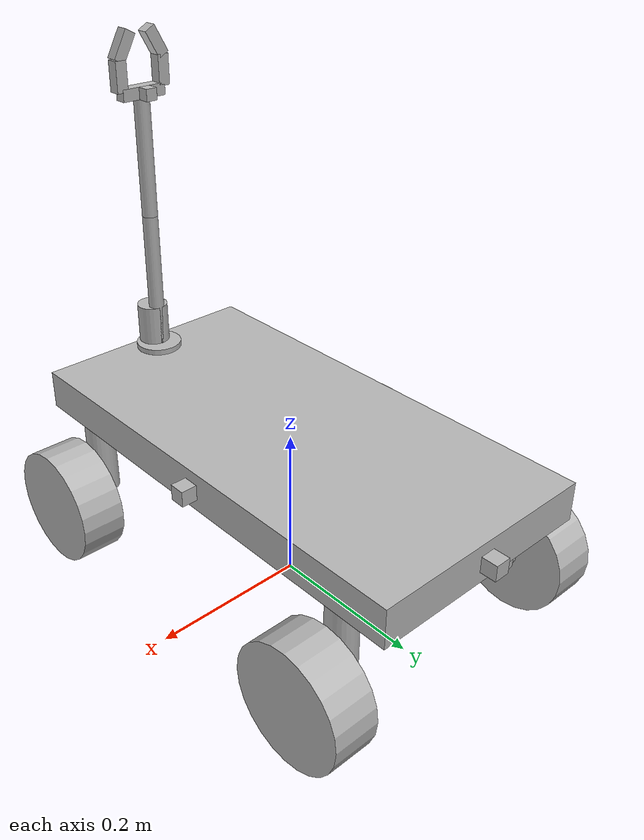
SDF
<?xml version="1.0" ?>
<sdf version="1.6">
	<model name="wheely">
		<link name="body_link">
			<pose>0 0 0.19649999999999998 0 0 0</pose>
			<inertial>
				<inertia>
					<ixx>0.30208333</ixx>
					<iyy>0.07708333</iyy>
					<izz>0.37500000</izz>
				</inertia>
				<mass>10.00000000</mass>
			</inertial>
			<visual name="body_link_vis">
				<geometry>
					<box>
						<size>0.3 0.6 0.049999999999999996</size>
					</box>
				</geometry>
			</visual>
			<collision name="body_link_col">
				<geometry>
					<box>
						<size>0.3 0.6 0.049999999999999996</size>
					</box>
				</geometry>
			</collision>
		</link>
		<link name="susp_1">
			<pose>0.13125 -0.22499999999999998 0.12375 0 0 0</pose>
			<inertial>
				<inertia>
					<ixx>0.00088008</ixx>
					<iyy>0.00088008</iyy>
					<izz>0.00017578</izz>
				</inertia>
				<mass>1.00000000</mass>
			</inertial>
			<visual name="susp_1_vis">
				<geometry>
					<cylinder>
						<radius>0.01875</radius>
						<length>0.0975</length>
					</cylinder>
				</geometry>
			</visual>
			<collision name="susp_1_col">
				<geometry>
					<cylinder>
						<radius>0.01875</radius>
						<length>0.0975</length>
					</cylinder>
				</geometry>
			</collision>
		</link>
		<link name="wheel_1">
			<pose>0.18125000000000002 -0.22499999999999998 0.075 0 1.5707963267948966 0</pose>
			<inertial>
				<inertia>
					<ixx>0.00281250</ixx>
					<iyy>0.00168362</iyy>
					<izz>0.00168362</izz>
				</inertia>
				<mass>1.00000000</mass>
			</inertial>
			<visual name="wheel_1_vis">
				<geometry>
					<cylinder>
						<radius>0.075</radius>
						<length>0.05769230769230769</length>
					</cylinder>
				</geometry>
			</visual>
			<collision name="wheel_1_col">
				<geometry>
					<cylinder>
						<radius>0.075</radius>
						<length>0.05769230769230769</length>
					</cylinder>
				</geometry>
			</collision>
		</link>
		<joint name="susp1_body" type="fixed">
			<pose>0 0 0.04875 0 0 0</pose>
			<child>susp_1</child>
			<parent>body_link</parent>
		</joint>
		<joint name="susp_axel_1" type="fixed">
			<pose>0 0 -0.025 0 0 0</pose>
			<child>axel_1</child>
			<parent>susp_1</parent>
		</joint>
		<link name="susp_2">
			<pose>0.13125 0.22499999999999998 0.12375 0 0 0</pose>
			<inertial>
				<inertia>
					<ixx>0.00088008</ixx>
					<iyy>0.00088008</iyy>
					<izz>0.00017578</izz>
				</inertia>
				<mass>1.00000000</mass>
			</inertial>
			<visual name="susp_2_vis">
				<geometry>
					<cylinder>
						<radius>0.01875</radius>
						<length>0.0975</length>
					</cylinder>
				</geometry>
			</visual>
			<collision name="susp_2_col">
				<geometry>
					<cylinder>
						<radius>0.01875</radius>
						<length>0.0975</length>
					</cylinder>
				</geometry>
			</collision>
		</link>
		<link name="wheel_2">
			<pose>0.18125000000000002 0.22499999999999998 0.075 0 1.5707963267948966 0</pose>
			<inertial>
				<inertia>
					<ixx>0.00281250</ixx>
					<iyy>0.00168362</iyy>
					<izz>0.00168362</izz>
				</inertia>
				<mass>1.00000000</mass>
			</inertial>
			<visual name="wheel_2_vis">
				<geometry>
					<cylinder>
						<radius>0.075</radius>
						<length>0.05769230769230769</length>
					</cylinder>
				</geometry>
			</visual>
			<collision name="wheel_2_col">
				<geometry>
					<cylinder>
						<radius>0.075</radius>
						<length>0.05769230769230769</length>
					</cylinder>
				</geometry>
			</collision>
		</link>
		<joint name="susp2_body" type="fixed">
			<pose>0 0 0.04875 0 0 0</pose>
			<child>susp_2</child>
			<parent>body_link</parent>
		</joint>
		<joint name="susp_axel_2" type="fixed">
			<pose>0 0 -0.025 0 0 0</pose>
			<child>axel_2</child>
			<parent>susp_2</parent>
		</joint>
		<link name="susp_4">
			<pose>-0.13125 -0.22499999999999998 0.12375 0 0 0</pose>
			<inertial>
				<inertia>
					<ixx>0.00088008</ixx>
					<iyy>0.00088008</iyy>
					<izz>0.00017578</izz>
				</inertia>
				<mass>1.00000000</mass>
			</inertial>
			<visual name="susp_4_vis">
				<geometry>
					<cylinder>
						<radius>0.01875</radius>
						<length>0.0975</length>
					</cylinder>
				</geometry>
			</visual>
			<collision name="susp_4_col">
				<geometry>
					<cylinder>
						<radius>0.01875</radius>
						<length>0.0975</length>
					</cylinder>
				</geometry>
			</collision>
		</link>
		<link name="wheel_4">
			<pose>-0.18125000000000002 -0.22499999999999998 0.075 0 1.5707963267948966 0</pose>
			<inertial>
				<inertia>
					<ixx>0.00281250</ixx>
					<iyy>0.00168362</iyy>
					<izz>0.00168362</izz>
				</inertia>
				<mass>1.00000000</mass>
			</inertial>
			<visual name="wheel_4_vis">
				<geometry>
					<cylinder>
						<radius>0.075</radius>
						<length>0.05769230769230769</length>
					</cylinder>
				</geometry>
			</visual>
			<collision name="wheel_4_col">
				<geometry>
					<cylinder>
						<radius>0.075</radius>
						<length>0.05769230769230769</length>
					</cylinder>
				</geometry>
			</collision>
		</link>
		<joint name="susp4_body" type="fixed">
			<pose>0 0 0.04875 0 0 0</pose>
			<child>susp_4</child>
			<parent>body_link</parent>
		</joint>
		<joint name="susp_axel_4" type="fixed">
			<pose>0 0 0.025 0 0 0</pose>
			<child>axel_4</child>
			<parent>susp_4</parent>
		</joint>
		<link name="axel_1">
			<pose>0.15625 -0.22499999999999998 0.075 0 1.5707963267948966 0</pose>
			<inertial>
				<inertia>
					<ixx>0.00003600</ixx>
					<iyy>0.00012217</iyy>
					<izz>0.00012217</izz>
				</inertia>
				<mass>0.50000000</mass>
			</inertial>
			<visual name="axel_1_vis">
				<geometry>
					<cylinder>
						<radius>0.012</radius>
						<length>0.05</length>
					</cylinder>
				</geometry>
			</visual>
			<collision name="axel_1_col">
				<geometry>
					<cylinder>
						<radius>0.012</radius>
						<length>0.05</length>
					</cylinder>
				</geometry>
			</collision>
		</link>
		<joint name="axel_wheel_1" type="revolute">
			<pose>0 0 -0.028846153846153844 0 -1.5707963267948966 0</pose>
			<child>wheel_1</child>
			<parent>axel_1</parent>
			<axis>
				<xyz>1 0 0</xyz>
				<dynamics>
					<friction>0.05</friction>
					<damping>0.03</damping>
				</dynamics>
			</axis>
		</joint>
		<link name="axel_2">
			<pose>0.15625 0.22499999999999998 0.075 0 1.5707963267948966 0</pose>
			<inertial>
				<inertia>
					<ixx>0.00003600</ixx>
					<iyy>0.00012217</iyy>
					<izz>0.00012217</izz>
				</inertia>
				<mass>0.50000000</mass>
			</inertial>
			<visual name="axel_2_vis">
				<geometry>
					<cylinder>
						<radius>0.012</radius>
						<length>0.05</length>
					</cylinder>
				</geometry>
			</visual>
			<collision name="axel_2_col">
				<geometry>
					<cylinder>
						<radius>0.012</radius>
						<length>0.05</length>
					</cylinder>
				</geometry>
			</collision>
		</link>
		<joint name="axel_wheel_2" type="revolute">
			<pose>0 0 -0.028846153846153844 0 -1.5707963267948966 0</pose>
			<child>wheel_2</child>
			<parent>axel_2</parent>
			<axis>
				<xyz>1 0 0</xyz>
				<dynamics>
					<friction>0.05</friction>
					<damping>0.03</damping>
				</dynamics>
			</axis>
		</joint>
		<link name="axel_3">
			<pose>-0.15625 0.22499999999999998 0.075 0 1.5707963267948966 0</pose>
			<inertial>
				<inertia>
					<ixx>0.00003600</ixx>
					<iyy>0.00012217</iyy>
					<izz>0.00012217</izz>
				</inertia>
				<mass>0.50000000</mass>
			</inertial>
			<visual name="axel_3_vis">
				<geometry>
					<cylinder>
						<radius>0.012</radius>
						<length>0.05</length>
					</cylinder>
				</geometry>
			</visual>
			<collision name="axel_3_col">
				<geometry>
					<cylinder>
						<radius>0.012</radius>
						<length>0.05</length>
					</cylinder>
				</geometry>
			</collision>
		</link>
		<joint name="axel_wheel_3" type="revolute">
			<pose>0 0 0.028846153846153844 0 -1.5707963267948966 0</pose>
			<child>wheel_3</child>
			<parent>axel_3</parent>
			<axis>
				<xyz>1 0 0</xyz>
				<dynamics>
					<friction>0.05</friction>
					<damping>0.03</damping>
				</dynamics>
			</axis>
		</joint>
		<link name="axel_4">
			<pose>-0.15625 -0.22499999999999998 0.075 0 1.5707963267948966 0</pose>
			<inertial>
				<inertia>
					<ixx>0.00003600</ixx>
					<iyy>0.00012217</iyy>
					<izz>0.00012217</izz>
				</inertia>
				<mass>0.50000000</mass>
			</inertial>
			<visual name="axel_4_vis">
				<geometry>
					<cylinder>
						<radius>0.012</radius>
						<length>0.05</length>
					</cylinder>
				</geometry>
			</visual>
			<collision name="axel_4_col">
				<geometry>
					<cylinder>
						<radius>0.012</radius>
						<length>0.05</length>
					</cylinder>
				</geometry>
			</collision>
		</link>
		<joint name="axel_wheel_4" type="revolute">
			<pose>0 0 0.028846153846153844 0 -1.5707963267948966 0</pose>
			<child>wheel_4</child>
			<parent>axel_4</parent>
			<axis>
				<xyz>1 0 0</xyz>
				<dynamics>
					<friction>0.05</friction>
					<damping>0.03</damping>
				</dynamics>
			</axis>
		</joint>
		<link name="susp_3">
			<pose>-0.13125 0.22499999999999998 0.12375 0 0 0</pose>
			<inertial>
				<inertia>
					<ixx>0.00088008</ixx>
					<iyy>0.00088008</iyy>
					<izz>0.00017578</izz>
				</inertia>
				<mass>1.00000000</mass>
			</inertial>
			<visual name="susp_3_vis">
				<geometry>
					<cylinder>
						<radius>0.01875</radius>
						<length>0.0975</length>
					</cylinder>
				</geometry>
			</visual>
			<collision name="susp_3_col">
				<geometry>
					<cylinder>
						<radius>0.01875</radius>
						<length>0.0975</length>
					</cylinder>
				</geometry>
			</collision>
		</link>
		<link name="wheel_3">
			<pose>-0.18125000000000002 0.22499999999999998 0.075 0 1.5707963267948966 0</pose>
			<inertial>
				<inertia>
					<ixx>0.00281250</ixx>
					<iyy>0.00168362</iyy>
					<izz>0.00168362</izz>
				</inertia>
				<mass>1.00000000</mass>
			</inertial>
			<visual name="wheel_3_vis">
				<geometry>
					<cylinder>
						<radius>0.075</radius>
						<length>0.05769230769230769</length>
					</cylinder>
				</geometry>
			</visual>
			<collision name="wheel_3_col">
				<geometry>
					<cylinder>
						<radius>0.075</radius>
						<length>0.05769230769230769</length>
					</cylinder>
				</geometry>
			</collision>
		</link>
		<joint name="susp3_body" type="fixed">
			<pose>0 0 0.04875 0 0 0</pose>
			<child>susp_3</child>
			<parent>body_link</parent>
		</joint>
		<joint name="susp_axel_3" type="fixed">
			<pose>0 0 0.025 0 0 0</pose>
			<child>axel_3</child>
			<parent>susp_3</parent>
		</joint>
		<link name="arm_base">
			<pose>0 -0.27 0.22149999999999997 0 0 0</pose>
			<inertial>
				<inertia>
					<ixx>0.00024375</ixx>
					<iyy>0.00024375</iyy>
					<izz>0.00045000</izz>
				</inertia>
				<mass>1.00000000</mass>
			</inertial>
			<visual name="arm_base_vis">
				<geometry>
					<cylinder>
						<radius>0.03</radius>
						<length>0.015</length>
					</cylinder>
				</geometry>
			</visual>
			<collision name="arm_base_col">
				<geometry>
					<cylinder>
						<radius>0.03</radius>
						<length>0.015</length>
					</cylinder>
				</geometry>
			</collision>
		</link>
		<joint name="bodyLink_armBase" type="fixed">
			<pose>0 0 0 0 0 0</pose>
			<child>arm_base</child>
			<parent>body_link</parent>
		</joint>
		<link name="arm_base_top">
			<pose>0 -0.27 0.244 0 0 0</pose>
			<inertial>
				<inertia>
					<ixx>0.00005000</ixx>
					<iyy>0.00005000</iyy>
					<izz>0.00002500</izz>
				</inertia>
				<mass>0.50000000</mass>
			</inertial>
			<visual name="arm_base_top_vis">
				<geometry>
					<cylinder>
						<radius>0.01</radius>
						<length>0.03</length>
					</cylinder>
				</geometry>
			</visual>
			<collision name="arm_base_top_col">
				<geometry>
					<cylinder>
						<radius>0.01</radius>
						<length>0.03</length>
					</cylinder>
				</geometry>
			</collision>
		</link>
		<joint name="armBase_armBaseTop" type="revolute">
			<pose>0 0 -0.015 0 0 0</pose>
			<child>arm_base_top</child>
			<parent>arm_base</parent>
			<axis>
				<xyz>0 0 1</xyz>
				<dynamics>
					<friction>0.05</friction>
					<damping>0.03</damping>
				</dynamics>
			</axis>
		</joint>
		<link name="arm1">
			<pose>0 -0.27 0.334 0 0 0</pose>
			<inertial>
				<inertia>
					<ixx>0.00190000</ixx>
					<iyy>0.00190000</iyy>
					<izz>0.00005000</izz>
				</inertia>
				<mass>1.00000000</mass>
			</inertial>
			<visual name="arm1_vis">
				<geometry>
					<cylinder>
						<radius>0.01</radius>
						<length>0.15</length>
					</cylinder>
				</geometry>
			</visual>
			<collision name="arm1_col">
				<geometry>
					<cylinder>
						<radius>0.01</radius>
						<length>0.15</length>
					</cylinder>
				</geometry>
			</collision>
		</link>
		<joint name="armBaseTop_arm1" type="revolute">
			<pose>0 0 -0.075 0 0 0</pose>
			<child>arm1</child>
			<parent>arm_base_top</parent>
			<axis>
				<xyz>1 0 0</xyz>
				<dynamics>
					<friction>0.05</friction>
					<damping>0.03</damping>
				</dynamics>
				<limit>
					<upper>3.141592653589793</upper>
					<lower>-3.141592653589793</lower>
				</limit>
			</axis>
		</joint>
		<link name="arm2">
			<pose>0 -0.27 0.48400000000000004 0 0 0</pose>
			<inertial>
				<inertia>
					<ixx>0.00190000</ixx>
					<iyy>0.00190000</iyy>
					<izz>0.00005000</izz>
				</inertia>
				<mass>1.00000000</mass>
			</inertial>
			<visual name="arm2_vis">
				<geometry>
					<cylinder>
						<radius>0.01</radius>
						<length>0.15</length>
					</cylinder>
				</geometry>
			</visual>
			<collision name="arm2_col">
				<geometry>
					<cylinder>
						<radius>0.01</radius>
						<length>0.15</length>
					</cylinder>
				</geometry>
			</collision>
		</link>
		<joint name="arm1_arm2" type="revolute">
			<pose>0 0 -0.075 0 0 0</pose>
			<child>arm2</child>
			<parent>arm1</parent>
			<axis>
				<xyz>1 0 0</xyz>
				<dynamics>
					<friction>0.05</friction>
					<damping>0.03</damping>
				</dynamics>
				<limit>
					<upper>3.141592653589793</upper>
					<lower>-3.141592653589793</lower>
				</limit>
			</axis>
		</joint>
		<plugin filename="libwheel_plugin.so" name="wheel_ctr">
			<prefix>wheely/steering</prefix>
			<velPubTopic>cmd_wheel</velPubTopic>
			<odometrySubTopic>odom</odometrySubTopic>
			<kp>4</kp>
			<ki>4</ki>
			<kd>2</kd>
			<dt>0.01</dt>
			<turnAccuracy>0.008</turnAccuracy>
		</plugin>
		<plugin filename="libgazebo_ros_skid_steer_drive.so" name="skid_steer_controller">
			<alwaysOn>true</alwaysOn>
			<updateRate>1200</updateRate>
			<robotNamespace>wheely/steering</robotNamespace>
			<leftFrontJoint>axel_wheel_4</leftFrontJoint>
			<rightFrontJoint>axel_wheel_1</rightFrontJoint>
			<leftRearJoint>axel_wheel_3</leftRearJoint>
			<rightRearJoint>axel_wheel_2</rightRearJoint>
			<wheelSeparation>0.30480769230769234</wheelSeparation>
			<wheelDiameter>0.15</wheelDiameter>
			<torque>100</torque>
			<commandTopic>cmd_wheel</commandTopic>
			<odometryTopic>odom</odometryTopic>
			<odometryFrame>odom</odometryFrame>
			<broadcastTF>1</broadcastTF>
			<robotBaseFrame>body_link</robotBaseFrame>
		</plugin>
		<link name="palm">
			<pose>0 -0.27 0.5665 0 0 0</pose>
			<inertial>
				<inertia>
					<ixx>0.00000625</ixx>
					<iyy>0.00005312</iyy>
					<izz>0.00005312</izz>
				</inertia>
				<mass>0.16666667</mass>
			</inertial>
			<visual name="palm_vis">
				<geometry>
					<box>
						<size>0.06 0.015 0.015</size>
					</box>
				</geometry>
			</visual>
			<collision name="palm_col">
				<geometry>
					<box>
						<size>0.06 0.015 0.015</size>
					</box>
				</geometry>
			</collision>
		</link>
		<joint name="palm_joint" type="revolute">
			<pose>0 0 0 0 0 0</pose>
			<child>palm</child>
			<parent>arm2</parent>
			<axis>
				<xyz>1 0 0</xyz>
				<dynamics>
					<friction>0.05</friction>
					<damping>0.03</damping>
				</dynamics>
				<limit>
					<upper>3.141592653589793</upper>
					<lower>-3.141592653589793</lower>
				</limit>
			</axis>
		</joint>
		<link name="finger_one">
			<pose>0.03 -0.27 0.589 0 0 0</pose>
			<inertial>
				<inertia>
					<ixx>0.00002266</ixx>
					<iyy>0.00002266</iyy>
					<izz>0.00000625</izz>
				</inertia>
				<mass>0.16666667</mass>
			</inertial>
			<visual name="finger_one_vis">
				<geometry>
					<box>
						<size>0.015 0.015 0.0375</size>
					</box>
				</geometry>
			</visual>
			<collision name="finger_one_col">
				<geometry>
					<box>
						<size>0.015 0.015 0.0375</size>
					</box>
				</geometry>
			</collision>
			<sensor name="finger_one_sensor" type="contact">
				<contact>
					<collision>finger_one_col</collision>
				</contact>
				<always_on>1</always_on>
				<update_rate>30</update_rate>
				<visualize>true</visualize>
				<plugin filename="libcontact_plugin.so" name="my_plugin"/>
			</sensor>
		</link>
		<joint name="finger_one_joint" type="revolute">
			<pose>0 0 -0.01875 0 0 0</pose>
			<child>finger_one</child>
			<parent>palm</parent>
			<axis>
				<xyz>0 1 0</xyz>
				<dynamics>
					<friction>0.05</friction>
					<damping>0.03</damping>
				</dynamics>
				<limit>
					<upper>0</upper>
					<lower>0.7853981633974483</lower>
				</limit>
			</axis>
		</joint>
		<link name="finger_two">
			<pose>-0.03 -0.27 0.589 0 0 0</pose>
			<inertial>
				<inertia>
					<ixx>0.00002266</ixx>
					<iyy>0.00002266</iyy>
					<izz>0.00000625</izz>
				</inertia>
				<mass>0.16666667</mass>
			</inertial>
			<visual name="finger_two_vis">
				<geometry>
					<box>
						<size>0.015 0.015 0.0375</size>
					</box>
				</geometry>
			</visual>
			<collision name="finger_two_col">
				<geometry>
					<box>
						<size>0.015 0.015 0.0375</size>
					</box>
				</geometry>
			</collision>
			<sensor name="finger_two_sensor" type="contact">
				<contact>
					<collision>finger_two_col</collision>
				</contact>
				<always_on>1</always_on>
				<update_rate>30</update_rate>
				<visualize>true</visualize>
				<plugin filename="libcontact_plugin.so" name="my_plugin"/>
			</sensor>
		</link>
		<joint name="finger_two_joint" type="revolute">
			<pose>0 0 -0.01875 0 0 0</pose>
			<child>finger_two</child>
			<parent>palm</parent>
			<axis>
				<xyz>0 1 0</xyz>
				<dynamics>
					<friction>0.05</friction>
					<damping>0.03</damping>
				</dynamics>
				<limit>
					<upper>-0.7853981633974483</upper>
					<lower>0</lower>
				</limit>
			</axis>
		</joint>
		<link name="camera_link">
			<pose>0 -0.255 0.5665 0 -1.5707963267948966 0</pose>
			<inertial>
				<inertia>
					<ixx>0.00000375</ixx>
					<iyy>0.00000375</iyy>
					<izz>0.00000375</izz>
				</inertia>
				<mass>0.10000000</mass>
			</inertial>
			<visual name="camera_link_vis">
				<geometry>
					<box>
						<size>0.015 0.015 0.015</size>
					</box>
				</geometry>
			</visual>
			<collision name="camera_link_col">
				<geometry>
					<box>
						<size>0.015 0.015 0.015</size>
					</box>
				</geometry>
			</collision>
			<sensor name='camera1' type='camera'>
				<camera name="head">
				<horizontal_fov>1.3962634</horizontal_fov>
				<image>
					<width>800</width>
					<height>800</height>
					<format>R8G8B8</format>
				</image>
				<clip>
					<near>0.15</near>
					<far>300</far>
				</clip>
				</camera>
				<always_on>1</always_on>
				<update_rate>30</update_rate>
				<visualize>1</visualize>
				<plugin name="camera_controller" filename="libgazebo_ros_camera.so">
					<alwaysOn>true</alwaysOn>
					<updateRate>0.0</updateRate>
					<cameraName>wheely/camera</cameraName>
					<imageTopicName>image_raw</imageTopicName>
					<cameraInfoTopicName>camera_info</cameraInfoTopicName>
					<frameName>camera_link</frameName>
					<hackBaseline>0.07</hackBaseline>
					<distortionK1>0.0</distortionK1>
					<distortionK2>0.0</distortionK2>
					<distortionK3>0.0</distortionK3>
					<distortionT1>0.0</distortionT1>
					<distortionT2>0.0</distortionT2>
				</plugin>
			</sensor>
		</link>
		<joint name="camera_link_joint" type="fixed">
			<pose>0 0 0 0 0 0</pose>
			<child>palm</child>
			<parent>camera_link</parent>
		</joint>
		<link name="finger_one_tip">
			<pose>0.0225 -0.27 0.62275 0 -0.5 0</pose>
			<inertial>
				<inertia>
					<ixx>0.00002266</ixx>
					<iyy>0.00002266</iyy>
					<izz>0.00000625</izz>
				</inertia>
				<mass>0.16666667</mass>
			</inertial>
			<visual name="finger_one_tip_vis">
				<geometry>
					<box>
						<size>0.015 0.015 0.0375</size>
					</box>
				</geometry>
			</visual>
			<collision name="finger_one_tip_col">
				<geometry>
					<box>
						<size>0.015 0.015 0.0375</size>
					</box>
				</geometry>
			</collision>
			<sensor name="finger_one_tip_sensor" type="contact">
				<contact>
					<collision>finger_one_tip_col</collision>
				</contact>
				<always_on>1</always_on>
				<update_rate>30</update_rate>
				<visualize>true</visualize>
				<plugin filename="libcontact_plugin.so" name="my_plugin"/>
			</sensor>
		</link>
		<joint name="finger_one_tip_joint" type="fixed">
			<pose>0 0 -0.015 0 0 0</pose>
			<child>finger_one_tip</child>
			<parent>finger_one</parent>
		</joint>
		<link name="finger_two_tip">
			<pose>-0.0225 -0.27 0.62275 0 0.5 0</pose>
			<inertial>
				<inertia>
					<ixx>0.00002266</ixx>
					<iyy>0.00002266</iyy>
					<izz>0.00000625</izz>
				</inertia>
				<mass>0.16666667</mass>
			</inertial>
			<visual name="finger_two_tip_vis">
				<geometry>
					<box>
						<size>0.015 0.015 0.0375</size>
					</box>
				</geometry>
			</visual>
			<collision name="finger_two_tip_col">
				<geometry>
					<box>
						<size>0.015 0.015 0.0375</size>
					</box>
				</geometry>
			</collision>
			<sensor name="finger_two_tip_sensor" type="contact">
				<contact>
					<collision>finger_two_tip_col</collision>
				</contact>
				<always_on>1</always_on>
				<update_rate>30</update_rate>
				<visualize>true</visualize>
				<plugin filename="libcontact_plugin.so" name="my_plugin"/>
			</sensor>
		</link>
		<joint name="finger_two_tip_joint" type="fixed">
			<pose>0 0 -0.015 0 0 0</pose>
			<child>finger_two_tip</child>
			<parent>finger_two</parent>
		</joint>
		<plugin filename="libgripper_plugin.so" name="gripper_plugin"/>
		<plugin filename="libarm_controller.so" name="arm_controller"/>
		<link name="IR_link">
			<pose>0 -0.27999999999999997 0.25149999999999995 0 0 0</pose>
			<inertial>
				<inertia>
					<ixx>0.00000100</ixx>
					<iyy>0.00000100</iyy>
					<izz>0.00000100</izz>
				</inertia>
				<mass>0.00001000</mass>
			</inertial>
			<visual name="IR_link_vis">
				<geometry>
					<cylinder>
						<radius>0.02</radius>
						<length>0.06</length>
					</cylinder>
				</geometry>
			</visual>
			<collision name="IR_link_col">
				<geometry>
					<cylinder>
						<radius>0.02</radius>
						<length>0.06</length>
					</cylinder>
				</geometry>
			</collision>
			<sensor name="ir_sensor" type="ray">
				<visualize>false</visualize>
				<update_rate>50</update_rate>
				<pose>0 -0.02 0.03 0 0 -1.5707963267948966</pose>
				<plugin filename="libgazebo_ros_laser.so" name="gazebo_ros_range">
					<alwaysOn>true</alwaysOn>
					<updateRate>50</updateRate>
					<topicName>wheely/sensor/ir_laser</topicName>
					<frameName>IR_link</frameName>
					<radiation>infrared</radiation>
					<fov>0.2967</fov>
				</plugin>
				<ray>
					<scan>
						<horizontal>
							<samples>1080</samples>
							<resolution>1</resolution>
							<min_angle>-1.5707963267948966</min_angle>
							<max_angle>1.5707963267948966</max_angle>
						</horizontal>
					</scan>
					<range>
						<min>0.1</min>
						<max>30.0</max>
						<resolution>0.01</resolution>
					</range>
					<noise>
						<type>gaussian</type>
						<mean>0.0</mean>
						<stddev>0.01</stddev>
					</noise>
				</ray>
				<always_on>true</always_on>
			</sensor>
		</link>
		<joint name="IR_body_joint" type="revolute">
			<pose>0 0 -0.03 0 0 0</pose>
			<child>IR_link</child>
			<parent>body_link</parent>
			<axis>
				<xyz>0 0 1</xyz>
				<dynamics>
					<friction>0.05</friction>
					<damping>0.03</damping>
				</dynamics>
			</axis>
			<physics>
				<ode>
					<cfm_damping>1</cfm_damping>
					<implicit_spring_damper>1</implicit_spring_damper>
				</ode>
			</physics>
		</joint>
		<plugin filename="libIR_sensor.so" name="IR_sensor_ctrl"/>
		<link name="short_ir_front_link">
			<pose>0 -0.31 0.19649999999999998 0 0 0</pose>
			<inertial>
				<inertia>
					<ixx>0.00000100</ixx>
					<iyy>0.00000100</iyy>
					<izz>0.00000100</izz>
				</inertia>
				<mass>0.00001000</mass>
			</inertial>
			<visual name="short_ir_front_link_vis">
				<geometry>
					<box>
						<size>0.02 0.02 0.02</size>
					</box>
				</geometry>
			</visual>
			<collision name="short_ir_front_link_col">
				<geometry>
					<box>
						<size>0.02 0.02 0.02</size>
					</box>
				</geometry>
			</collision>
			<sensor name="short_ir_front_sensor" type="ray">
				<visualize>false</visualize>
				<update_rate>50</update_rate>
				<pose>0 -0.02 0 0 0 -1.5707963267948966</pose>
				<plugin filename="libgazebo_ros_range.so" name="short_plugin_front">
					<gaussianNoise>0.0</gaussianNoise>
					<alwaysOn>true</alwaysOn>
					<updateRate>50</updateRate>
					<topicName>/wheely/sensor/ir_shrt_front</topicName>
					<frameName>short_ir_front_link</frameName>
					<radiation>infrared</radiation>
					<fov>0.2967</fov>
				</plugin>
				<ray>
					<scan>
						<horizontal>
							<samples>180</samples>
							<resolution>1</resolution>
							<min_angle>-1.2217304763960306</min_angle>
							<max_angle>1.2217304763960306</max_angle>
						</horizontal>
						<vertical>
							<samples>1</samples>
							<resolution>1</resolution>
							<min_angle>0</min_angle>
							<max_angle>0</max_angle>
						</vertical>
					</scan>
					<range>
						<min>0.01</min>
						<max>3</max>
						<resolution>0.01</resolution>
					</range>
					<noise>
						<type>gaussian</type>
						<mean>0.0</mean>
						<stddev>0.01</stddev>
					</noise>
				</ray>
				<always_on>true</always_on>
			</sensor>
		</link>
		<joint name="short_ir_front_jt" type="fixed">
			<pose>0 0.01 0 0 0 0</pose>
			<child>short_ir_front_link</child>
			<parent>body_link</parent>
		</joint>
		<link name="short_ir_rear_link">
			<pose>0 0.31 0.19649999999999998 0 0 0</pose>
			<inertial>
				<inertia>
					<ixx>0.00000100</ixx>
					<iyy>0.00000100</iyy>
					<izz>0.00000100</izz>
				</inertia>
				<mass>0.00001000</mass>
			</inertial>
			<visual name="short_ir_rear_link_vis">
				<geometry>
					<box>
						<size>0.02 0.02 0.02</size>
					</box>
				</geometry>
			</visual>
			<collision name="short_ir_rear_link_col">
				<geometry>
					<box>
						<size>0.02 0.02 0.02</size>
					</box>
				</geometry>
			</collision>
			<sensor name="short_ir_rear_sensor" type="ray">
				<visualize>false</visualize>
				<update_rate>50</update_rate>
				<pose>0 0.02 0 0 0 1.5707963267948966</pose>
				<plugin filename="libgazebo_ros_range.so" name="short_plugin_rear">
					<gaussianNoise>0.0</gaussianNoise>
					<alwaysOn>true</alwaysOn>
					<updateRate>50</updateRate>
					<topicName>/wheely/sensor/ir_shrt_rear</topicName>
					<frameName>short_ir_rear_link</frameName>
					<radiation>infrared</radiation>
					<fov>0.2967</fov>
				</plugin>
				<ray>
					<scan>
						<horizontal>
							<samples>180</samples>
							<resolution>1</resolution>
							<min_angle>-1.2217304763960306</min_angle>
							<max_angle>1.2217304763960306</max_angle>
						</horizontal>
						<vertical>
							<samples>1</samples>
							<resolution>1</resolution>
							<min_angle>0</min_angle>
							<max_angle>0</max_angle>
						</vertical>
					</scan>
					<range>
						<min>0.01</min>
						<max>3</max>
						<resolution>0.01</resolution>
					</range>
					<noise>
						<type>gaussian</type>
						<mean>0.0</mean>
						<stddev>0.01</stddev>
					</noise>
				</ray>
				<always_on>true</always_on>
			</sensor>
		</link>
		<joint name="short_ir_rear_jt" type="fixed">
			<pose>0 -0.01 0 0 0 0</pose>
			<child>short_ir_rear_link</child>
			<parent>body_link</parent>
		</joint>
		<link name="short_ir_left_link">
			<pose>0.16 0 0.19649999999999998 0 0 0</pose>
			<inertial>
				<inertia>
					<ixx>0.00000100</ixx>
					<iyy>0.00000100</iyy>
					<izz>0.00000100</izz>
				</inertia>
				<mass>0.00001000</mass>
			</inertial>
			<visual name="short_ir_left_link_vis">
				<geometry>
					<box>
						<size>0.02 0.02 0.02</size>
					</box>
				</geometry>
			</visual>
			<collision name="short_ir_left_link_col">
				<geometry>
					<box>
						<size>0.02 0.02 0.02</size>
					</box>
				</geometry>
			</collision>
			<sensor name="short_ir_left_sensor" type="ray">
				<visualize>false</visualize>
				<update_rate>50</update_rate>
				<pose>0.02 0 0 0 0 0</pose>
				<plugin filename="libgazebo_ros_range.so" name="short_plugin_left">
					<gaussianNoise>0.0</gaussianNoise>
					<alwaysOn>true</alwaysOn>
					<updateRate>50</updateRate>
					<topicName>/wheely/sensor/ir_shrt_left</topicName>
					<frameName>short_ir_left_link</frameName>
					<radiation>infrared</radiation>
					<fov>0.2967</fov>
				</plugin>
				<ray>
					<scan>
						<horizontal>
							<samples>180</samples>
							<resolution>1</resolution>
							<min_angle>-1.2217304763960306</min_angle>
							<max_angle>1.2217304763960306</max_angle>
						</horizontal>
						<vertical>
							<samples>1</samples>
							<resolution>1</resolution>
							<min_angle>0</min_angle>
							<max_angle>0</max_angle>
						</vertical>
					</scan>
					<range>
						<min>0.01</min>
						<max>3</max>
						<resolution>0.01</resolution>
					</range>
					<noise>
						<type>gaussian</type>
						<mean>0.0</mean>
						<stddev>0.01</stddev>
					</noise>
				</ray>
				<always_on>true</always_on>
			</sensor>
		</link>
		<joint name="short_ir_left_jt" type="fixed">
			<pose>-0.01 0 0 0 0 0</pose>
			<child>short_ir_left_link</child>
			<parent>body_link</parent>
		</joint>
		<link name="short_ir_right_link">
			<pose>-0.16 0 0.19649999999999998 0 0 0</pose>
			<inertial>
				<inertia>
					<ixx>0.00000100</ixx>
					<iyy>0.00000100</iyy>
					<izz>0.00000100</izz>
				</inertia>
				<mass>0.00001000</mass>
			</inertial>
			<visual name="short_ir_right_link_vis">
				<geometry>
					<box>
						<size>0.02 0.02 0.02</size>
					</box>
				</geometry>
			</visual>
			<collision name="short_ir_right_link_col">
				<geometry>
					<box>
						<size>0.02 0.02 0.02</size>
					</box>
				</geometry>
			</collision>
			<sensor name="short_ir_right_sensor" type="ray">
				<visualize>false</visualize>
				<update_rate>50</update_rate>
				<pose>-0.02 0 0 0 0 -3.141592653589793</pose>
				<plugin filename="libgazebo_ros_range.so" name="short_plugin_right">
					<gaussianNoise>0.0</gaussianNoise>
					<alwaysOn>true</alwaysOn>
					<updateRate>50</updateRate>
					<topicName>/wheely/sensor/ir_shrt_right</topicName>
					<frameName>short_ir_right_link</frameName>
					<radiation>infrared</radiation>
					<fov>0.2967</fov>
				</plugin>
				<ray>
					<scan>
						<horizontal>
							<samples>180</samples>
							<resolution>1</resolution>
							<min_angle>-1.2217304763960306</min_angle>
							<max_angle>1.2217304763960306</max_angle>
						</horizontal>
						<vertical>
							<samples>1</samples>
							<resolution>1</resolution>
							<min_angle>0</min_angle>
							<max_angle>0</max_angle>
						</vertical>
					</scan>
					<range>
						<min>0.01</min>
						<max>3</max>
						<resolution>0.01</resolution>
					</range>
					<noise>
						<type>gaussian</type>
						<mean>0.0</mean>
						<stddev>0.01</stddev>
					</noise>
				</ray>
				<always_on>true</always_on>
			</sensor>
		</link>
		<joint name="short_ir_right_jt" type="fixed">
			<pose>0.01 0 0 0 0 0</pose>
			<child>short_ir_right_link</child>
			<parent>body_link</parent>
		</joint>
	</model>
</sdf>
